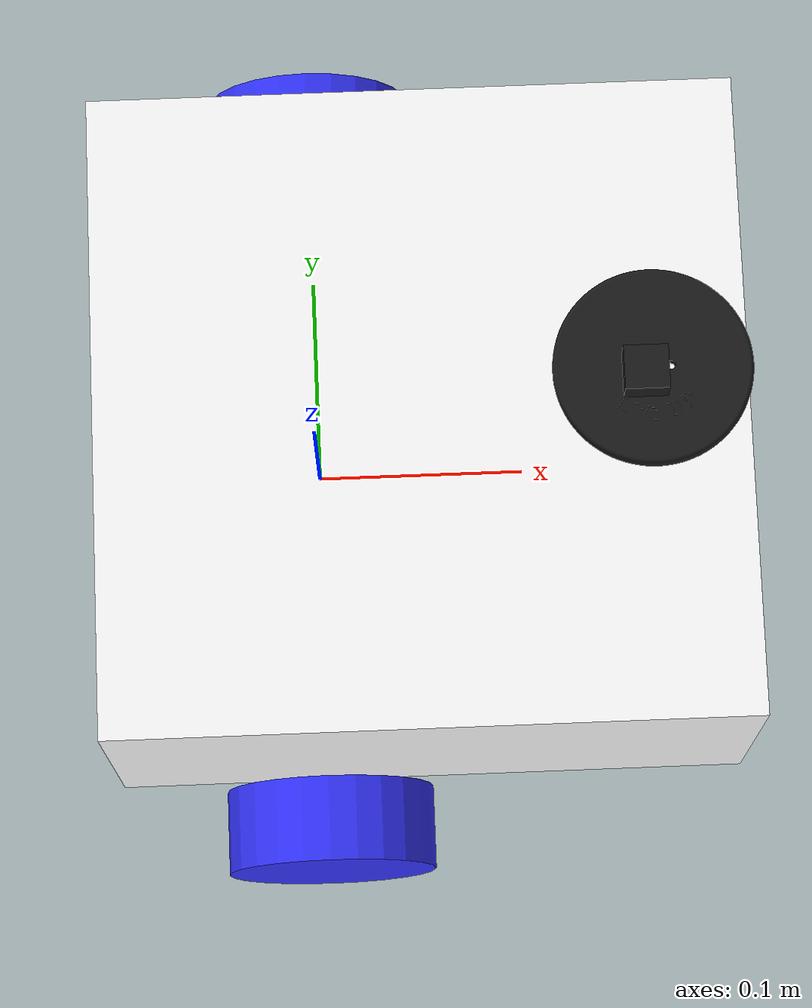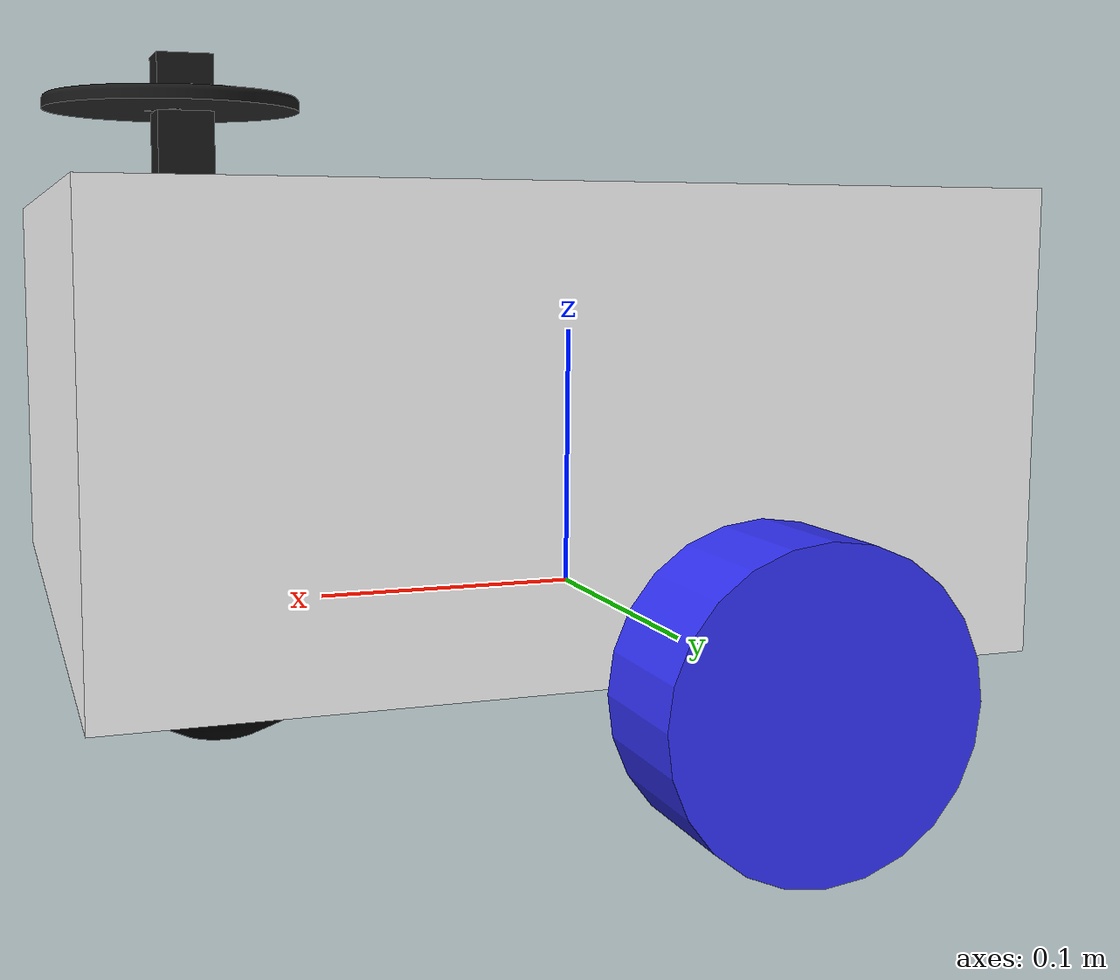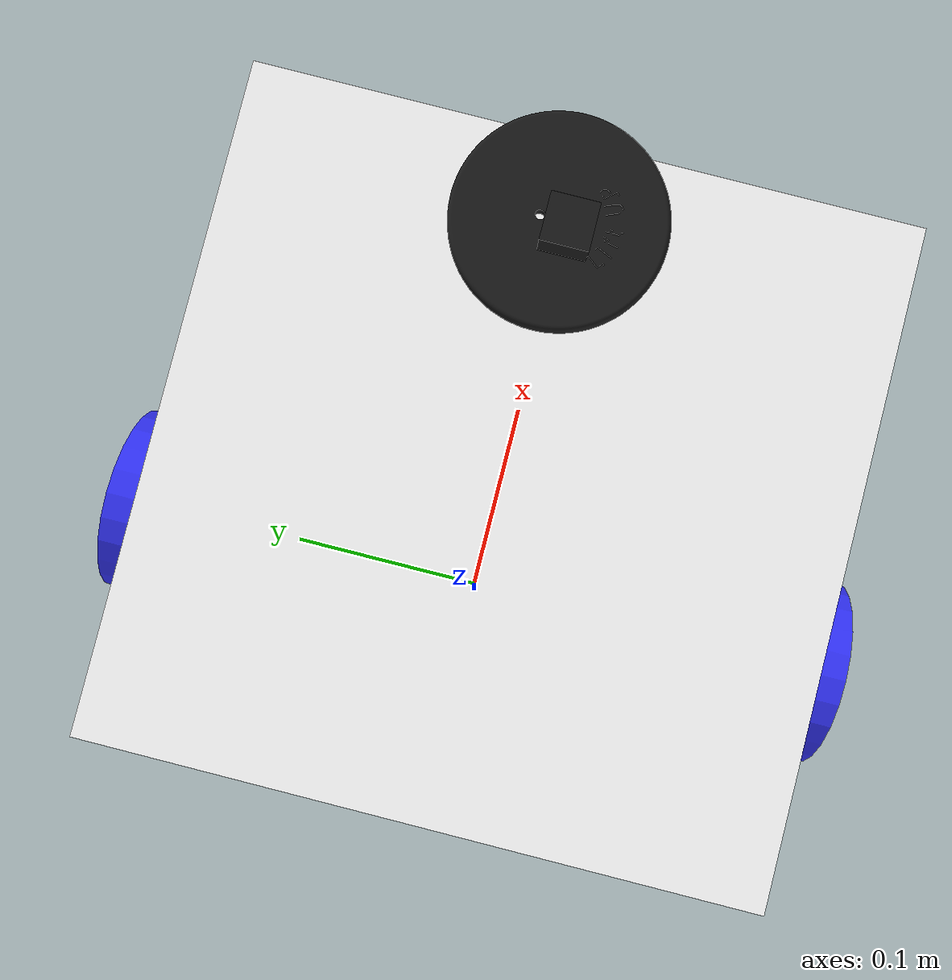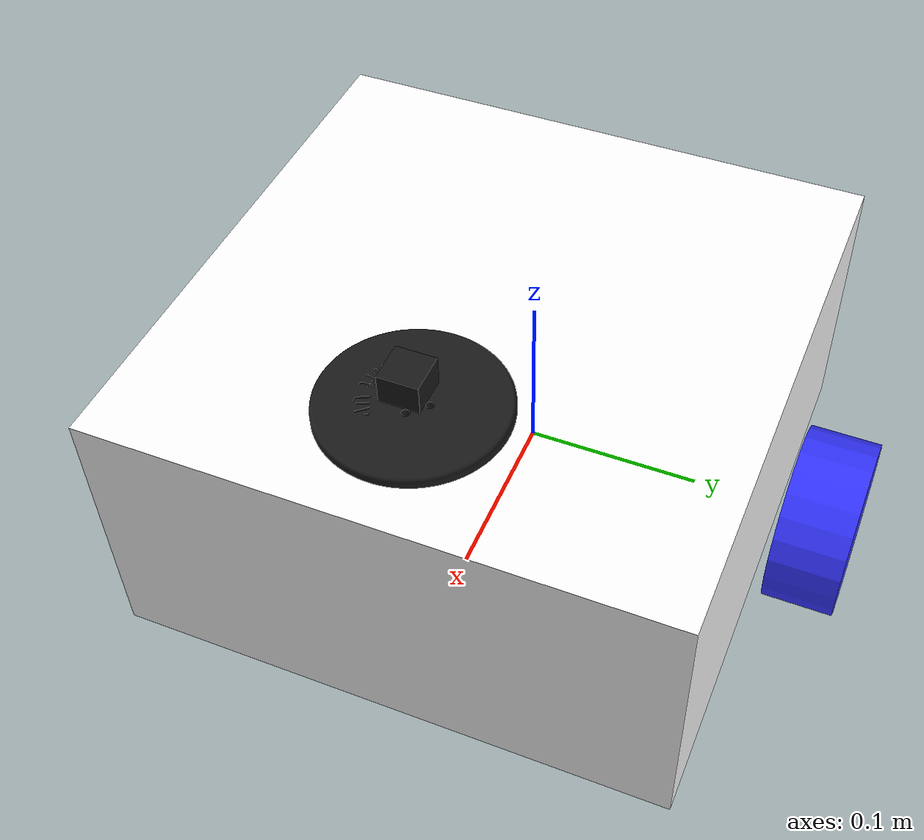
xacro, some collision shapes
<?xml version="1.0"?>
<robot xmlns:xacro="http://www.ros.org/wiki/xacro" >

    <xacro:include filename="inertial_macros.xacro"/>

    <material name="white">
        <color rgba="1 1 1 1" />
    </material>

    <material name="orange">
        <color rgba="1 0.3 0.1 1"/>
    </material>

    <material name="blue">
        <color rgba="0.2 0.2 1 1"/>
    </material>

    <material name="black">
        <color rgba="0 0 0 1"/>
    </material>

    <material name="red">
        <color rgba="1 0 0 1"/>
    </material>

    <!-- BASE LINK -->

    <link name="base_link">

    </link>

     <!-- BASE_FOOTPRINT Link -->

    <joint name="base_footprint" type="fixed">
        <parent link="base_link"/>
        <child link="base_footprint"/>
        <origin xyz="0 0 0" rpy="0 0 0"/>
    </joint>

    <link name="base_footprint">

    </link>

    <!-- CHASSIS LINK -->

    <joint name="chassis_joint" type="fixed">
        <parent link="base_link"/>
        <child link="chassis"/>
        <origin xyz="-0.1 0 0"/>
    </joint>

    <link name="chassis">
        <visual>
            <origin xyz="0.15 0 0.075"/>
            <geometry>
                <box size="0.3 0.3 0.15"/>
            </geometry>
            <material name="white"/>
        </visual>
        <collision>
            <origin xyz="0.15 0 0.075"/>
            <geometry>
                <box size="0.3 0.3 0.15"/>
            </geometry>
        </collision>
        <xacro:inertial_box mass="0.5" x="0.3" y="0.3" z="0.15">
            <origin xyz="0.15 0 0.075" rpy="0 0 0"/>
        </xacro:inertial_box>
    </link>

    <gazebo reference="chassis">
        <material>Gazebo/White</material>
    </gazebo>

    <!-- LEFT WHEEL LINK -->

    <joint name="left_wheel_joint" type="continuous">
        <parent link="base_link"/>
        <child link="left_wheel"/>
        <origin xyz="0 0.175 0" rpy="-${pi/2} 0 0" />
        <axis xyz="0 0 1"/>
    </joint>

    <link name="left_wheel">
        <visual>
            <geometry>
                <cylinder radius="0.05" length="0.04"/>
            </geometry>
            <material name="blue"/>
        </visual>
        <collision>
            <geometry>
                <cylinder radius="0.05" length="0.04"/>
            </geometry>
        </collision>
        <xacro:inertial_cylinder mass="0.1" length="0.04" radius="0.05">
            <origin xyz="0 0 0" rpy="0 0 0"/>
        </xacro:inertial_cylinder>
    </link>

    <gazebo reference="left_wheel">
        <material>Gazebo/Blue</material>
    </gazebo>

    <!-- RIGHT WHEEL LINK -->

    <joint name="right_wheel_joint" type="continuous">
        <parent link="base_link"/>
        <child link="right_wheel"/>
        <origin xyz="0 -0.175 0" rpy="${pi/2} 0 0" />
        <axis xyz="0 0 -1"/>
    </joint>

    <link name="right_wheel">
        <visual>
            <geometry>
                <cylinder radius="0.05" length="0.04"/>
            </geometry>
            <material name="blue"/>
        </visual>
        <collision>
            <geometry>
                <cylinder radius="0.05" length="0.04"/>
            </geometry>
        </collision>
        <xacro:inertial_cylinder mass="0.1" length="0.04" radius="0.05">
            <origin xyz="0 0 0" rpy="0 0 0"/>
        </xacro:inertial_cylinder>
    </link>

    <gazebo reference="right_wheel">
        <material>Gazebo/Blue</material>
    </gazebo>

    <!-- CASTER WHEEL LINK -->

    <joint name="caster_wheel_joint" type="fixed">
        <parent link="chassis"/>
        <child link="caster_wheel"/>
        <origin xyz="0.24 0 0"/>
    </joint>

    <link name="caster_wheel">
        <visual>
            <geometry>
                <sphere radius="0.05"/>
            </geometry>
            <material name="black"/>
        </visual>
        <collision>
            <geometry>
                <sphere radius="0.05"/>
            </geometry>
        </collision>
        <xacro:inertial_sphere mass="0.1" radius="0.05">
            <origin xyz="0 0 0" rpy="0 0 0"/>
        </xacro:inertial_sphere>
    </link>

    <gazebo reference="caster_wheel">
        <material>Gazebo/Black</material>
        <mu1 value="0.0005"/>
        <mu2 value="0.0005"/>
    </gazebo>

  <xacro:macro name="lifter_transmission" params="joint_name actuator_name">
    <transmission name="${joint_name}_transmission">
        <plugin>transmission_interface/SimpleTransmission</plugin>
        <actuator name="${actuator_name}" role="actuator1"/>
        <joint name="${joint_name}" role="joint1">
            <mechanical_reduction>1.0</mechanical_reduction>
        </joint>
    </transmission>
  </xacro:macro>

  <xacro:property name="screw_diameter" value="0.008" />
  <xacro:property name="screw_length" value="0.10" />
  <xacro:property name="plate_radius" value="0.045" />

    <!-- Link for the platform mid -->
  <link name="link_platform_mid">
    <origin xyz="0 0 0.0" rpy="0 0 0"/>
    <visual>
      <geometry>
        <mesh filename="package://my_bot/meshes/Lead_screw.STL" scale="0.001 0.001 0.001" />
      </geometry>
      <material name="black">
        <color rgba="0.1 0.1 0.1 1" />
      </material>
    </visual>
    <collision>
      <geometry>
        <box size="0.02 0.02 0.10" />
      </geometry>
    </collision>
    <inertial>
      <mass value="1"/>
      <inertia ixx="1.0" ixy="0.0" ixz="0.0"
               iyy="1.0" iyz="0.0"
               izz="1.0"/>
    </inertial>
  </link>

  <!-- Joint connecting upper link to platform mid -->
  <joint name="platform_joint" type="fixed">
    <parent link="chassis" />
    <child link="link_platform_mid" />
    <origin xyz="0.25 0 0.15" rpy="0 0 0"/>
  </joint>

  <!-- Link for the lift mechanism -->
  <link name="lift_link">
    <visual>
      <origin xyz="-${plate_radius/1.1} -${plate_radius/1.1}  0.0" rpy="0 0 0"/>
      <geometry>
        <mesh filename="package://my_bot/meshes/upperstand.STL" scale="0.001 0.001 0.001" />
      </geometry>
      <material name="black">
        <color rgba="0.1 0.1 0.1 1" />
      </material>
    </visual>
    <collision>
      <geometry>
        <mesh filename="package://my_bot/meshes/upperstand.STL" scale="0.001 0.001 0.001" />
      </geometry>
    </collision>
    <inertial>
      <mass value="1"/>
      <inertia ixx="1.0" ixy="0.0" ixz="0.0"
               iyy="1.0" iyz="0.0"
               izz="1.0"/>
    </inertial>
  </link>

  <!-- Prismatic joint for lifting -->
  <joint name="lift_joint" type="prismatic">
    <origin xyz="0 0 0.03" rpy="0 0 0"/>
    <parent link="link_platform_mid" />
    <child link="lift_link" />
    <axis xyz="0 0 1" rpy="0 0 0"/>
    <limit effort="100.0" lower="-0.05" upper="0.5" velocity="1.0"/>
    <dynamics damping="0.1" friction="0.1"/>
    <hardwareInterface>hardware_interface/VelocityJointInterface</hardwareInterface>
  </joint>

 <!-- Use the lifter transmission macro for lift_joint -->
 <lifter_transmission joint_name="lift_joint" actuator_name="lifter_motor"/>

</robot>
